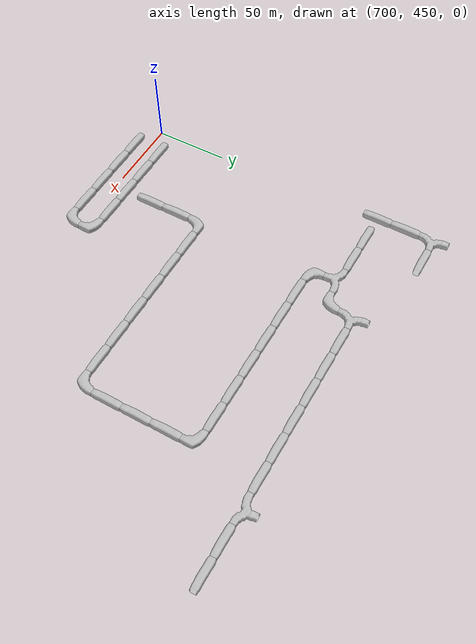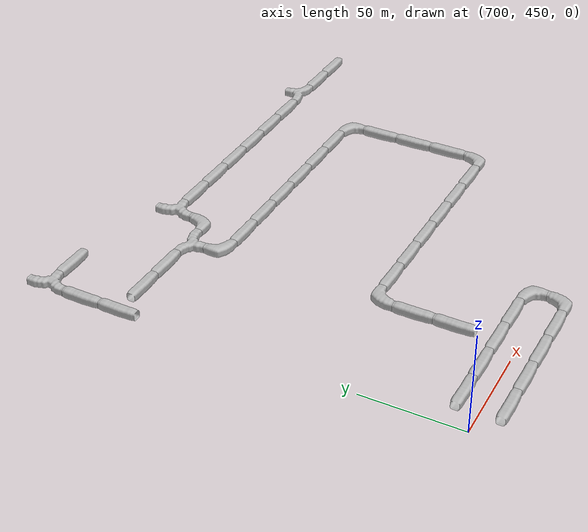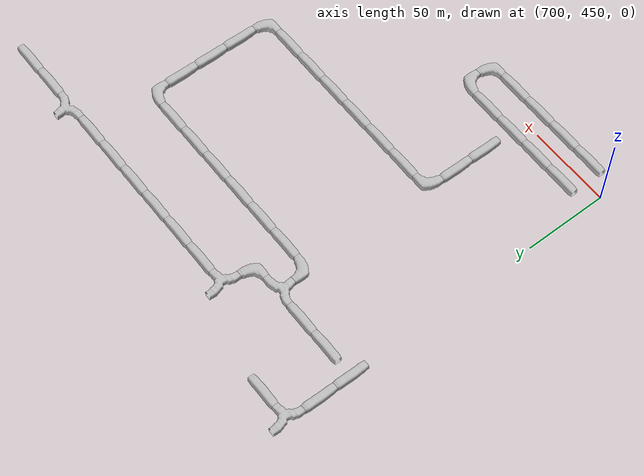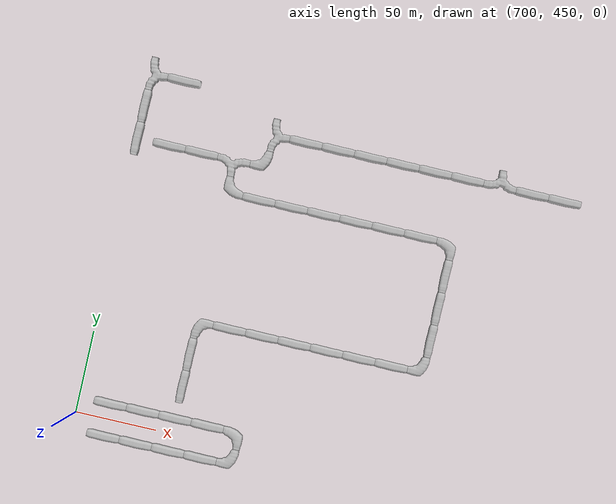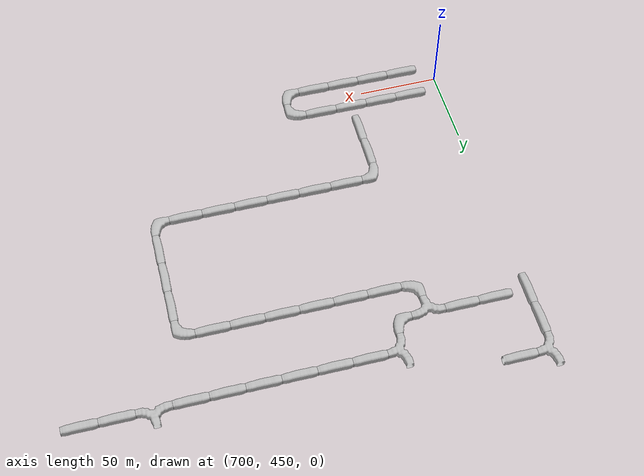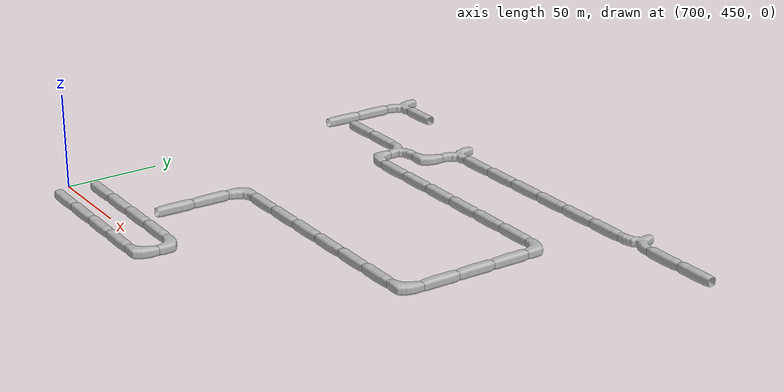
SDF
<sdf version="1.6">
 <world name="cave_16000_16">
  <include>
   <static>true</static>
   <name>cave_36_23</name>
   <pose>720 460 0 0 0 1.5707963267948966</pose>
   <uri>model://cave_straight_20m</uri>
  </include>
  <include>
   <static>true</static>
   <name>cave_37_23</name>
   <pose>740 460 0 0 0 1.5707963267948966</pose>
   <uri>model://cave_straight_20m</uri>
  </include>
  <include>
   <static>true</static>
   <name>cave_38_23</name>
   <pose>760 460 0 0 0 1.5707963267948966</pose>
   <uri>model://cave_straight_20m</uri>
  </include>
  <include>
   <static>true</static>
   <name>cave_39_23</name>
   <pose>780 460 0 0 0 1.5707963267948966</pose>
   <uri>model://cave_straight_20m</uri>
  </include>
  <include>
   <static>true</static>
   <name>cave_40_23</name>
   <pose>800 460 0 0 0 3.141592653589793</pose>
   <uri>model://cave_L_20m</uri>
  </include>
  <include>
   <static>true</static>
   <name>cave_40_22</name>
   <pose>800 440 0 0 0 1.5707963267948966</pose>
   <uri>model://cave_L_20m</uri>
  </include>
  <include>
   <static>true</static>
   <name>cave_39_22</name>
   <pose>780 440 0 0 0 1.5707963267948966</pose>
   <uri>model://cave_straight_20m</uri>
  </include>
  <include>
   <static>true</static>
   <name>cave_38_22</name>
   <pose>760 440 0 0 0 1.5707963267948966</pose>
   <uri>model://cave_straight_20m</uri>
  </include>
  <include>
   <static>true</static>
   <name>cave_37_22</name>
   <pose>740 440 0 0 0 1.5707963267948966</pose>
   <uri>model://cave_straight_20m</uri>
  </include>
  <include>
   <static>true</static>
   <name>cave_36_22</name>
   <pose>720 440 0 0 0 1.5707963267948966</pose>
   <uri>model://cave_straight_20m</uri>
  </include>
  <include>
   <static>true</static>
   <name>cave_35_31</name>
   <pose>700 620 0 0 0 0.0</pose>
   <uri>model://cave_straight_20m</uri>
  </include>
  <include>
   <static>true</static>
   <name>cave_35_32</name>
   <pose>700 640 0 0 0 0.0</pose>
   <uri>model://cave_straight_20m</uri>
  </include>
  <include>
   <static>true</static>
   <name>cave_35_33</name>
   <pose>700 660 0 0 0 -1.5707963267948966</pose>
   <uri>model://cave_3way_20m</uri>
  </include>
  <include>
   <static>true</static>
   <name>cave_36_33</name>
   <pose>720 660 0 0 0 1.5707963267948966</pose>
   <uri>model://cave_straight_20m</uri>
  </include>
  <include>
   <static>true</static>
   <name>cave_39_32</name>
   <pose>780 640 0 0 0 -1.5707963267948966</pose>
   <uri>model://cave_3way_20m</uri>
  </include>
  <include>
   <static>true</static>
   <name>cave_40_32</name>
   <pose>800 640 0 0 0 1.5707963267948966</pose>
   <uri>model://cave_straight_20m</uri>
  </include>
  <include>
   <static>true</static>
   <name>cave_41_32</name>
   <pose>820 640 0 0 0 1.5707963267948966</pose>
   <uri>model://cave_straight_20m</uri>
  </include>
  <include>
   <static>true</static>
   <name>cave_42_32</name>
   <pose>840 640 0 0 0 1.5707963267948966</pose>
   <uri>model://cave_straight_20m</uri>
  </include>
  <include>
   <static>true</static>
   <name>cave_43_32</name>
   <pose>860 640 0 0 0 1.5707963267948966</pose>
   <uri>model://cave_straight_20m</uri>
  </include>
  <include>
   <static>true</static>
   <name>cave_44_32</name>
   <pose>880 640 0 0 0 1.5707963267948966</pose>
   <uri>model://cave_straight_20m</uri>
  </include>
  <include>
   <static>true</static>
   <name>cave_45_32</name>
   <pose>900 640 0 0 0 1.5707963267948966</pose>
   <uri>model://cave_straight_20m</uri>
  </include>
  <include>
   <static>true</static>
   <name>cave_46_32</name>
   <pose>920 640 0 0 0 0.0</pose>
   <uri>model://cave_3way_20m</uri>
  </include>
  <include>
   <static>true</static>
   <name>cave_47_32</name>
   <pose>940 640 0 0 0 1.5707963267948966</pose>
   <uri>model://cave_straight_20m</uri>
  </include>
  <include>
   <static>true</static>
   <name>cave_48_32</name>
   <pose>960 640 0 0 0 1.5707963267948966</pose>
   <uri>model://cave_straight_20m</uri>
  </include>
  <include>
   <static>true</static>
   <name>cave_39_31</name>
   <pose>780 620 0 0 0 1.5707963267948966</pose>
   <uri>model://cave_L_20m</uri>
  </include>
  <include>
   <static>true</static>
   <name>cave_38_31</name>
   <pose>760 620 0 0 0 3.141592653589793</pose>
   <uri>model://cave_3way_20m</uri>
  </include>
  <include>
   <static>true</static>
   <name>cave_38_30</name>
   <pose>760 600 0 0 0 0.0</pose>
   <uri>model://cave_L_20m</uri>
  </include>
  <include>
   <static>true</static>
   <name>cave_39_30</name>
   <pose>780 600 0 0 0 1.5707963267948966</pose>
   <uri>model://cave_straight_20m</uri>
  </include>
  <include>
   <static>true</static>
   <name>cave_40_30</name>
   <pose>800 600 0 0 0 1.5707963267948966</pose>
   <uri>model://cave_straight_20m</uri>
  </include>
  <include>
   <static>true</static>
   <name>cave_41_30</name>
   <pose>820 600 0 0 0 1.5707963267948966</pose>
   <uri>model://cave_straight_20m</uri>
  </include>
  <include>
   <static>true</static>
   <name>cave_42_30</name>
   <pose>840 600 0 0 0 1.5707963267948966</pose>
   <uri>model://cave_straight_20m</uri>
  </include>
  <include>
   <static>true</static>
   <name>cave_43_30</name>
   <pose>860 600 0 0 0 1.5707963267948966</pose>
   <uri>model://cave_straight_20m</uri>
  </include>
  <include>
   <static>true</static>
   <name>cave_44_30</name>
   <pose>880 600 0 0 0 1.5707963267948966</pose>
   <uri>model://cave_straight_20m</uri>
  </include>
  <include>
   <static>true</static>
   <name>cave_45_30</name>
   <pose>900 600 0 0 0 3.141592653589793</pose>
   <uri>model://cave_L_20m</uri>
  </include>
  <include>
   <static>true</static>
   <name>cave_45_29</name>
   <pose>900 580 0 0 0 0.0</pose>
   <uri>model://cave_straight_20m</uri>
  </include>
  <include>
   <static>true</static>
   <name>cave_45_28</name>
   <pose>900 560 0 0 0 0.0</pose>
   <uri>model://cave_straight_20m</uri>
  </include>
  <include>
   <static>true</static>
   <name>cave_45_27</name>
   <pose>900 540 0 0 0 0.0</pose>
   <uri>model://cave_straight_20m</uri>
  </include>
  <include>
   <static>true</static>
   <name>cave_45_26</name>
   <pose>900 520 0 0 0 1.5707963267948966</pose>
   <uri>model://cave_L_20m</uri>
  </include>
  <include>
   <static>true</static>
   <name>cave_44_26</name>
   <pose>880 520 0 0 0 1.5707963267948966</pose>
   <uri>model://cave_straight_20m</uri>
  </include>
  <include>
   <static>true</static>
   <name>cave_43_26</name>
   <pose>860 520 0 0 0 1.5707963267948966</pose>
   <uri>model://cave_straight_20m</uri>
  </include>
  <include>
   <static>true</static>
   <name>cave_42_26</name>
   <pose>840 520 0 0 0 1.5707963267948966</pose>
   <uri>model://cave_straight_20m</uri>
  </include>
  <include>
   <static>true</static>
   <name>cave_41_26</name>
   <pose>820 520 0 0 0 1.5707963267948966</pose>
   <uri>model://cave_straight_20m</uri>
  </include>
  <include>
   <static>true</static>
   <name>cave_40_26</name>
   <pose>800 520 0 0 0 1.5707963267948966</pose>
   <uri>model://cave_straight_20m</uri>
  </include>
  <include>
   <static>true</static>
   <name>cave_39_26</name>
   <pose>780 520 0 0 0 1.5707963267948966</pose>
   <uri>model://cave_straight_20m</uri>
  </include>
  <include>
   <static>true</static>
   <name>cave_38_26</name>
   <pose>760 520 0 0 0 -1.5707963267948966</pose>
   <uri>model://cave_L_20m</uri>
  </include>
  <include>
   <static>true</static>
   <name>cave_38_25</name>
   <pose>760 500 0 0 0 0.0</pose>
   <uri>model://cave_straight_20m</uri>
  </include>
  <include>
   <static>true</static>
   <name>cave_38_24</name>
   <pose>760 480 0 0 0 0.0</pose>
   <uri>model://cave_straight_20m</uri>
  </include>
  <include>
   <static>true</static>
   <name>cave_37_31</name>
   <pose>740 620 0 0 0 1.5707963267948966</pose>
   <uri>model://cave_straight_20m</uri>
  </include>
  <include>
   <static>true</static>
   <name>cave_36_31</name>
   <pose>720 620 0 0 0 1.5707963267948966</pose>
   <uri>model://cave_straight_20m</uri>
  </include>
 </world>
</sdf>
